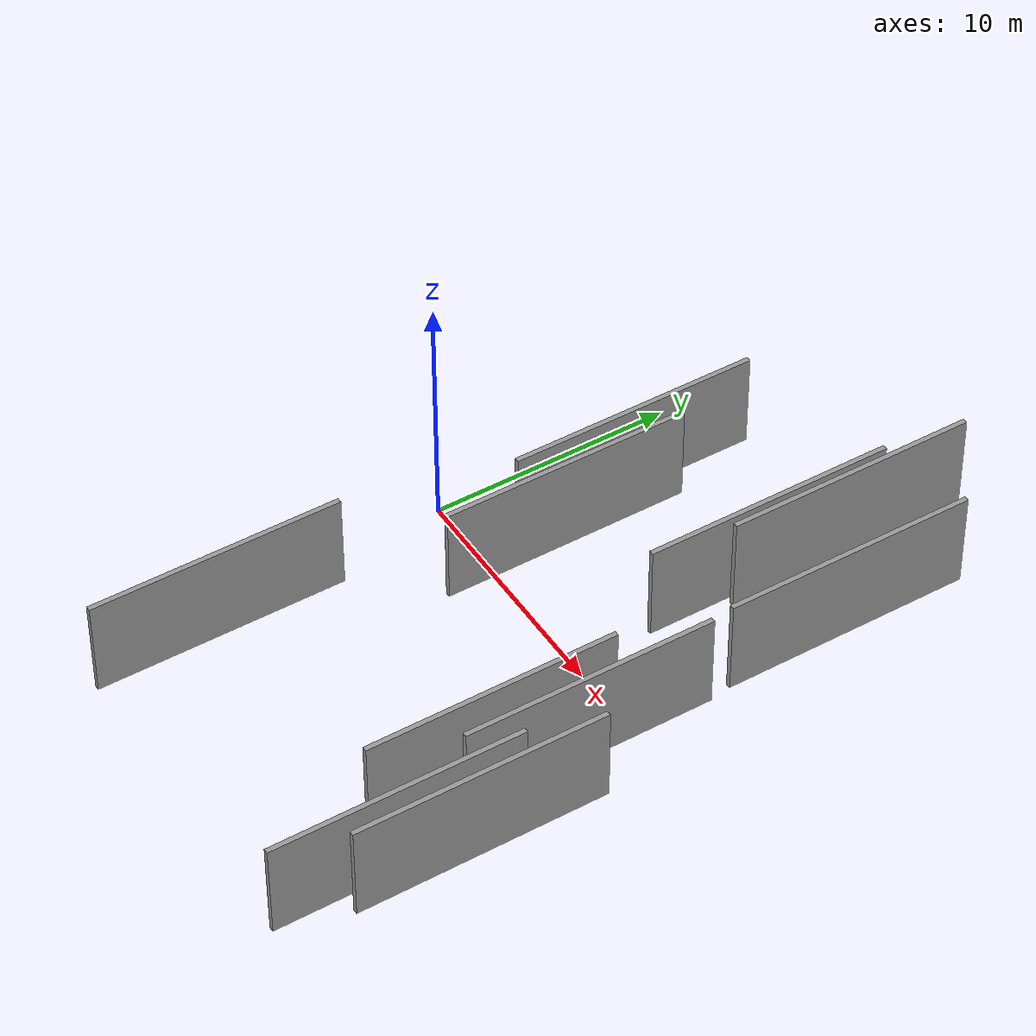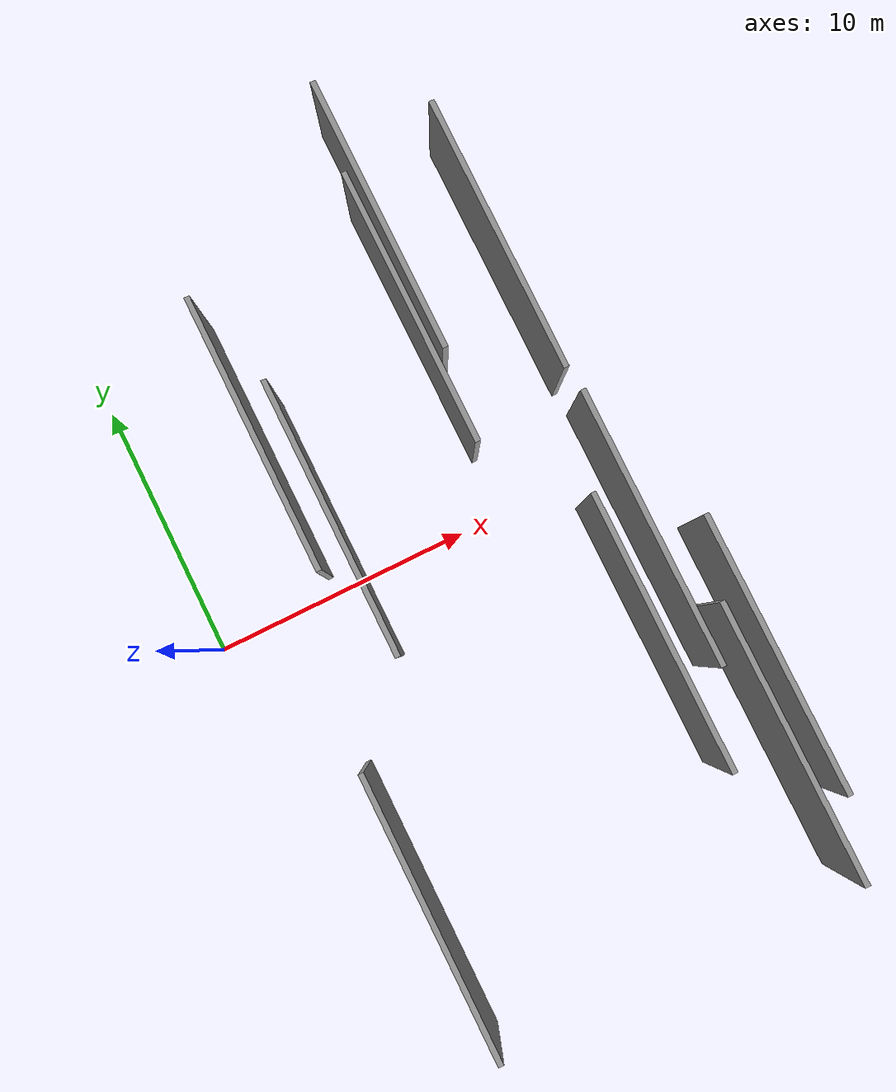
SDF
<sdf version="1.6">
 <world name="default">
  <scene>
   <sky><clouds><speed>12</speed></clouds></sky>
   <ambient>0.4 0.4 0.4 1</ambient>
   <background>0.7 0.7 0.7 1</background>
   <shadows>1</shadows>
  </scene>
  <gravity>0 0 -9.8066</gravity>
  <magnetic_field>6e-06 2.3e-05 -4.2e-05</magnetic_field>
  <physics default="0" name="default_physics" type="ode">
   <ode>
    <solver>
     <type>quick</type>
     <iters>10</iters>
     <sor>1.0</sor>
     <use_dynamic_moi_rescaling>0</use_dynamic_moi_rescaling>
    </solver>
    <constraints>
     <cfm>0</cfm>
     <erp>0.2</erp>
     <contact_max_correcting_vel>100</contact_max_correcting_vel>
     <contact_surface_layer>0.001</contact_surface_layer>
    </constraints>
   </ode>
   <max_step_size>0.004</max_step_size>
   <real_time_factor>1</real_time_factor>
   <real_time_update_rate>250</real_time_update_rate>
  </physics>
  <light name="sun" type="directional">
   <pose>0 0 10 0 0 0</pose>
   <diffuse>0.8 0.8 0.8 1</diffuse>
   <specular>0.2 0.2 0.2 1</specular>
   <attenuation>
    <range>1000</range>
    <constant>0.9</constant>
    <linear>0.01</linear>
    <quadratic>0.001</quadratic>
   </attenuation>
   <direction>-0.5 0.1 -0.9</direction>
  </light>
  <model name="grey_wall_1">
   <static>1</static>
   <pose>11.3944 6.9352 2.5 0.000000 0.000000 1.570796</pose>
   <link name="link">
    <pose>0 0 2.00 0 0 0</pose>
    <collision name="collision"><geometry><box><size>10.00 0.2 4.00</size></box></geometry></collision>
    <visual name="visual">
     <cast_shadows>0</cast_shadows>
     <geometry><box><size>10.00 0.2 4.00</size></box></geometry>
     <material>
      <script>
       <uri>model://grey_wall/materials/scripts</uri>
       <uri>model://grey_wall/materials/textures</uri>
       <name>vrc/grey_wall</name>
      </script>
     </material>
    </visual>
   </link>
  </model>
  <model name="grey_wall_2">
   <static>1</static>
   <pose>15.0578 7.8496 2.5 0.000000 0.000000 1.570796</pose>
   <link name="link">
    <pose>0 0 2.00 0 0 0</pose>
    <collision name="collision"><geometry><box><size>10.00 0.2 4.00</size></box></geometry></collision>
    <visual name="visual">
     <cast_shadows>0</cast_shadows>
     <geometry><box><size>10.00 0.2 4.00</size></box></geometry>
     <material>
      <script>
       <uri>model://grey_wall/materials/scripts</uri>
       <uri>model://grey_wall/materials/textures</uri>
       <name>vrc/grey_wall</name>
      </script>
     </material>
    </visual>
   </link>
  </model>
  <model name="grey_wall_3">
   <static>1</static>
   <pose>16.1169 -11.1395 2.5 0.000000 0.000000 1.570796</pose>
   <link name="link">
    <pose>0 0 2.00 0 0 0</pose>
    <collision name="collision"><geometry><box><size>10.00 0.2 4.00</size></box></geometry></collision>
    <visual name="visual">
     <cast_shadows>0</cast_shadows>
     <geometry><box><size>10.00 0.2 4.00</size></box></geometry>
     <material>
      <script>
       <uri>model://grey_wall/materials/scripts</uri>
       <uri>model://grey_wall/materials/textures</uri>
       <name>vrc/grey_wall</name>
      </script>
     </material>
    </visual>
   </link>
  </model>
  <model name="grey_wall_4">
   <static>1</static>
   <pose>4.9560 5.4106 2.5 0.000000 0.000000 1.570796</pose>
   <link name="link">
    <pose>0 0 2.00 0 0 0</pose>
    <collision name="collision"><geometry><box><size>10.00 0.2 4.00</size></box></geometry></collision>
    <visual name="visual">
     <cast_shadows>0</cast_shadows>
     <geometry><box><size>10.00 0.2 4.00</size></box></geometry>
     <material>
      <script>
       <uri>model://grey_wall/materials/scripts</uri>
       <uri>model://grey_wall/materials/textures</uri>
       <name>vrc/grey_wall</name>
      </script>
     </material>
    </visual>
   </link>
  </model>
  <model name="grey_wall_5">
   <static>1</static>
   <pose>15.2093 -3.0215 2.5 0.000000 0.000000 1.570796</pose>
   <link name="link">
    <pose>0 0 2.00 0 0 0</pose>
    <collision name="collision"><geometry><box><size>10.00 0.2 4.00</size></box></geometry></collision>
    <visual name="visual">
     <cast_shadows>0</cast_shadows>
     <geometry><box><size>10.00 0.2 4.00</size></box></geometry>
     <material>
      <script>
       <uri>model://grey_wall/materials/scripts</uri>
       <uri>model://grey_wall/materials/textures</uri>
       <name>vrc/grey_wall</name>
      </script>
     </material>
    </visual>
   </link>
  </model>
  <model name="grey_wall_6">
   <static>1</static>
   <pose>6.0266 1.8242 2.5 0.000000 0.000000 1.570796</pose>
   <link name="link">
    <pose>0 0 2.00 0 0 0</pose>
    <collision name="collision"><geometry><box><size>10.00 0.2 4.00</size></box></geometry></collision>
    <visual name="visual">
     <cast_shadows>0</cast_shadows>
     <geometry><box><size>10.00 0.2 4.00</size></box></geometry>
     <material>
      <script>
       <uri>model://grey_wall/materials/scripts</uri>
       <uri>model://grey_wall/materials/textures</uri>
       <name>vrc/grey_wall</name>
      </script>
     </material>
    </visual>
   </link>
  </model>
  <model name="grey_wall_7">
   <static>1</static>
   <pose>3.3591 -10.9559 2.5 0.000000 0.000000 1.570796</pose>
   <link name="link">
    <pose>0 0 2.00 0 0 0</pose>
    <collision name="collision"><geometry><box><size>10.00 0.2 4.00</size></box></geometry></collision>
    <visual name="visual">
     <cast_shadows>0</cast_shadows>
     <geometry><box><size>10.00 0.2 4.00</size></box></geometry>
     <material>
      <script>
       <uri>model://grey_wall/materials/scripts</uri>
       <uri>model://grey_wall/materials/textures</uri>
       <name>vrc/grey_wall</name>
      </script>
     </material>
    </visual>
   </link>
  </model>
  <model name="grey_wall_8">
   <static>1</static>
   <pose>13.9889 -6.1769 2.5 0.000000 0.000000 1.570796</pose>
   <link name="link">
    <pose>0 0 2.00 0 0 0</pose>
    <collision name="collision"><geometry><box><size>10.00 0.2 4.00</size></box></geometry></collision>
    <visual name="visual">
     <cast_shadows>0</cast_shadows>
     <geometry><box><size>10.00 0.2 4.00</size></box></geometry>
     <material>
      <script>
       <uri>model://grey_wall/materials/scripts</uri>
       <uri>model://grey_wall/materials/textures</uri>
       <name>vrc/grey_wall</name>
      </script>
     </material>
    </visual>
   </link>
  </model>
  <model name="grey_wall_9">
   <static>1</static>
   <pose>11.8119 10.1795 2.5 0.000000 0.000000 1.570796</pose>
   <link name="link">
    <pose>0 0 2.00 0 0 0</pose>
    <collision name="collision"><geometry><box><size>10.00 0.2 4.00</size></box></geometry></collision>
    <visual name="visual">
     <cast_shadows>0</cast_shadows>
     <geometry><box><size>10.00 0.2 4.00</size></box></geometry>
     <material>
      <script>
       <uri>model://grey_wall/materials/scripts</uri>
       <uri>model://grey_wall/materials/textures</uri>
       <name>vrc/grey_wall</name>
      </script>
     </material>
    </visual>
   </link>
  </model>
  <model name="grey_wall_10">
   <static>1</static>
   <pose>16.9413 -8.3978 2.5 0.000000 0.000000 1.570796</pose>
   <link name="link">
    <pose>0 0 2.00 0 0 0</pose>
    <collision name="collision"><geometry><box><size>10.00 0.2 4.00</size></box></geometry></collision>
    <visual name="visual">
     <cast_shadows>0</cast_shadows>
     <geometry><box><size>10.00 0.2 4.00</size></box></geometry>
     <material>
      <script>
       <uri>model://grey_wall/materials/scripts</uri>
       <uri>model://grey_wall/materials/textures</uri>
       <name>vrc/grey_wall</name>
      </script>
     </material>
    </visual>
   </link>
  </model>
 </world>
</sdf>
